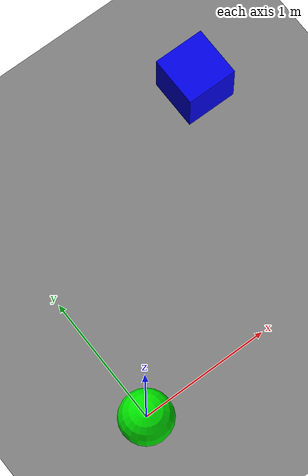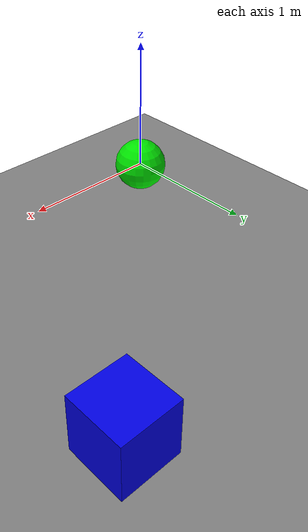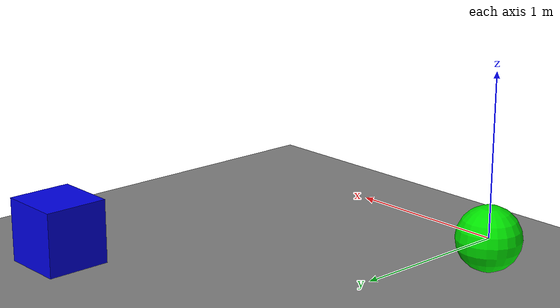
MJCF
<mujoco>
    <option gravity="0 0 0" timestep="0.005"/>
    <worldbody>
        <geom name='floor' pos='0 0 -0.2' size='5 5 .125' type='plane' condim='3'/>
        <body name="ball" pos="0 0 0">
            <light diffuse="1.5 1.5 1.5" pos="0 0 2" dir="0 0 -1" mode="track"/>
            <joint axis="1 0 0" damping="0" name="slide0" pos="0 0 0" type="slide"/>
            <joint axis="0 1 0" damping="0" name="slide1" pos="0 0 0" type="slide"/>
            <geom type="sphere" size="0.2" mass="100" rgba="0 .9 0 1"/>
        </body>
        <body name="box" pos="1.8 1.8 0">
            <light name="light2" pos="0 0 2" mode="fixed" />
            <geom mass="100" size="0.2 0.2 0.2" type="box" rgba="0 0 0.9 1"/>
        </body>
    </worldbody>
    <actuator>
        <motor gear="1" joint="slide0"/>
        <motor gear="1" joint="slide1"/>
    </actuator>
</mujoco>
